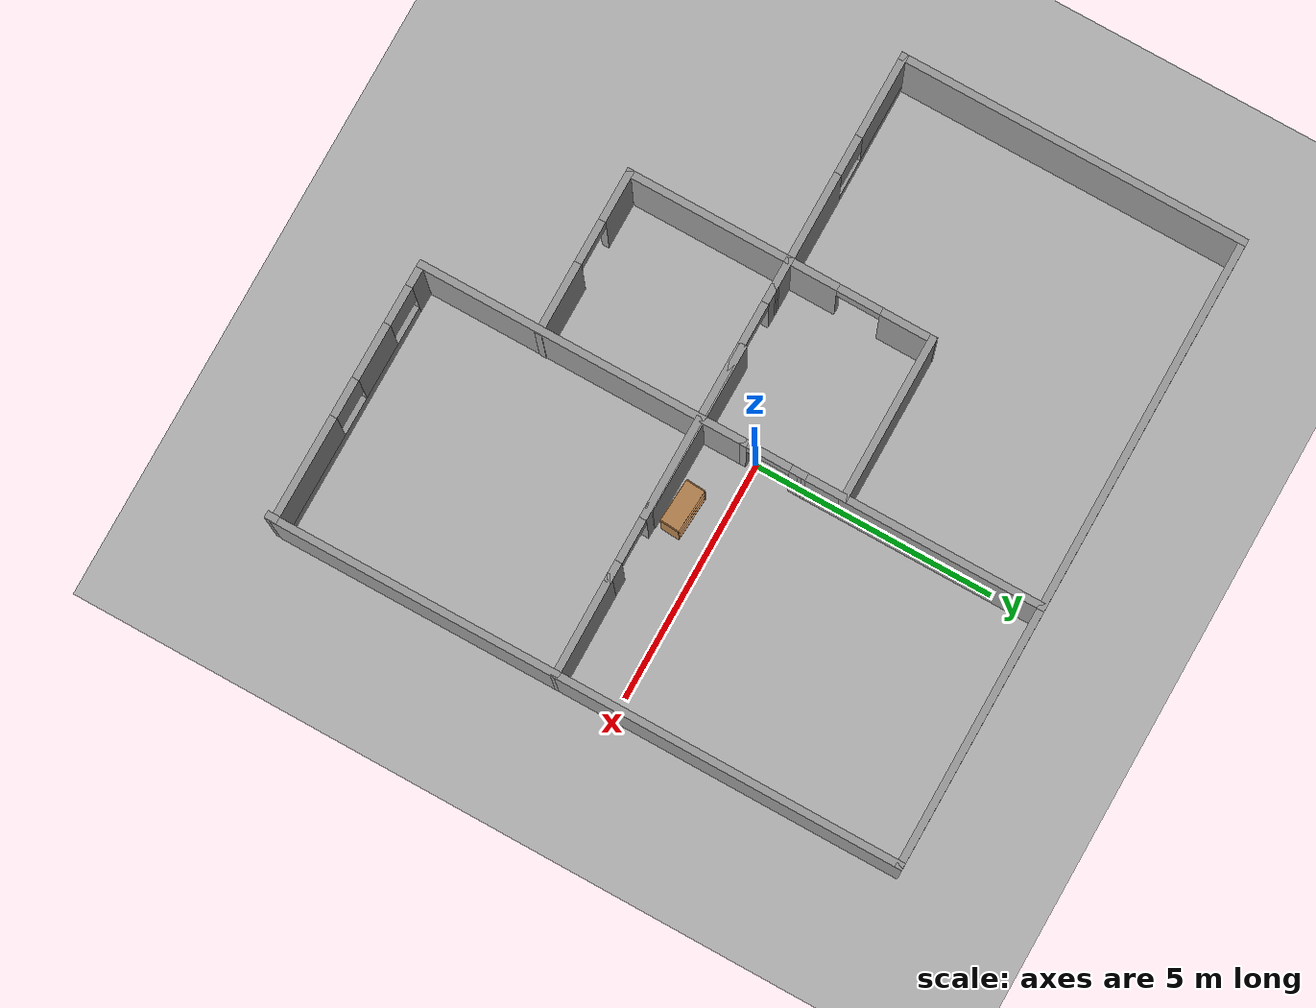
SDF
<sdf version="1.9">
 <world name="default">
  <gravity>0 0 -9.8</gravity>
  <magnetic_field>6e-06 2.3e-05 -4.2e-05</magnetic_field>
  <atmosphere type="adiabatic"/>
  <physics type="ode">
   <max_step_size>0.001</max_step_size>
   <real_time_factor>1</real_time_factor>
   <real_time_update_rate>1000</real_time_update_rate>
  </physics>
  <scene><ambient>0.4 0.4 0.4 1</ambient><background>0.7 0.7 0.7 1</background><shadows>true</shadows></scene>
  <model name="1plan">
   <pose>-1.11146 -0.57122 0 0 -0.009987 0</pose>
   <link name="Wall_0">
    <collision name="Wall_0_Collision">
     <geometry><box><size>3.48261 0.15 2.5</size></box></geometry>
     <pose>0 0 1.25 0 -0 0</pose>
    </collision>
    <visual name="Wall_0_Visual">
     <pose>0 0 1.25 0 -0 0</pose>
     <geometry><box><size>3.48261 0.15 2.5</size></box></geometry>
     <material>
      <script><uri>file://media/materials/scripts/gazebo.material</uri><name>Gazebo/Grey</name></script>
      <ambient>1 1 1 1</ambient>
     </material>
     <meta><layer>0</layer></meta>
    </visual>
    <pose>-0.500101 2.4239 0 0 -0 0</pose>
    <inertial>
     <mass>1</mass>
     <inertia><ixx>1</ixx><ixy>0</ixy><ixz>0</ixz><iyy>1</iyy><iyz>0</iyz><izz>1</izz></inertia>
    </inertial>
   </link>
   <link name="Wall_1">
    <collision name="Wall_1_Collision">
     <geometry><box><size>4.25 0.15 2.5</size></box></geometry>
     <pose>0 0 1.25 0 -0 0</pose>
    </collision>
    <visual name="Wall_1_Visual">
     <pose>0 0 1.25 0 -0 0</pose>
     <geometry><box><size>4.25 0.15 2.5</size></box></geometry>
     <material>
      <script><uri>file://media/materials/scripts/gazebo.material</uri><name>Gazebo/Grey</name></script>
      <ambient>1 1 1 1</ambient>
     </material>
     <meta><layer>0</layer></meta>
    </visual>
    <pose>1.1662 4.4739 0 0 -0 1.5708</pose>
    <inertial>
     <mass>1</mass>
     <inertia><ixx>1</ixx><ixy>0</ixy><ixz>0</ixz><iyy>1</iyy><iyz>0</iyz><izz>1</izz></inertia>
    </inertial>
   </link>
   <link name="Wall_12">
    <pose>-4.3588 -0.573924 0 0 -0 3.14159</pose>
    <visual name="Wall_12_Visual_0">
     <pose>-1.29006 0 1.25 0 -0 0</pose>
     <geometry><box><size>1.91988 0.15 2.5</size></box></geometry>
     <material>
      <script><uri>file://media/materials/scripts/gazebo.material</uri><name>Gazebo/Grey</name></script>
      <ambient>1 1 1 1</ambient>
     </material>
     <meta><layer>0</layer></meta>
    </visual>
    <collision name="Wall_12_Collision_0">
     <geometry><box><size>1.91988 0.15 2.5</size></box></geometry>
     <pose>-1.29006 0 1.25 0 -0 0</pose>
    </collision>
    <visual name="Wall_12_Visual_1">
     <pose>0.959941 0 0.25 0 -0 0</pose>
     <geometry><box><size>2.58012 0.15 0.5</size></box></geometry>
     <material>
      <script><uri>file://media/materials/scripts/gazebo.material</uri><name>Gazebo/Grey</name></script>
      <ambient>1 1 1 1</ambient>
     </material>
     <meta><layer>0</layer></meta>
    </visual>
    <collision name="Wall_12_Collision_1">
     <geometry><box><size>2.58012 0.15 0.5</size></box></geometry>
     <pose>0.959941 0 0.25 0 -0 0</pose>
    </collision>
    <visual name="Wall_12_Visual_2">
     <pose>1.35994 0 1.5 0 -0 0</pose>
     <geometry><box><size>1.78012 0.15 2</size></box></geometry>
     <material>
      <script><uri>file://media/materials/scripts/gazebo.material</uri><name>Gazebo/Grey</name></script>
      <ambient>1 1 1 1</ambient>
     </material>
     <meta><layer>0</layer></meta>
    </visual>
    <collision name="Wall_12_Collision_2">
     <geometry><box><size>1.78012 0.15 2</size></box></geometry>
     <pose>1.35994 0 1.5 0 -0 0</pose>
    </collision>
    <visual name="Wall_12_Visual_3">
     <pose>0.069882 0 1.9 0 -0 0</pose>
     <geometry><box><size>0.8 0.15 1.2</size></box></geometry>
     <material>
      <script><uri>file://media/materials/scripts/gazebo.material</uri><name>Gazebo/Grey</name></script>
      <ambient>1 1 1 1</ambient>
     </material>
     <meta><layer>0</layer></meta>
    </visual>
    <collision name="Wall_12_Collision_3">
     <geometry><box><size>0.8 0.15 1.2</size></box></geometry>
     <pose>0.069882 0 1.9 0 -0 0</pose>
    </collision>
    <inertial>
     <mass>1</mass>
     <inertia><ixx>1</ixx><ixy>0</ixy><ixz>0</ixz><iyy>1</iyy><iyz>0</iyz><izz>1</izz></inertia>
    </inertial>
   </link>
   <link name="Wall_14">
    <collision name="Wall_14_Collision">
     <geometry><box><size>7.25 0.15 2.5</size></box></geometry>
     <pose>0 0 1.25 0 -0 0</pose>
    </collision>
    <visual name="Wall_14_Visual">
     <pose>0 0 1.25 0 -0 0</pose>
     <geometry><box><size>7.25 0.15 2.5</size></box></geometry>
     <material>
      <script><uri>file://media/materials/scripts/gazebo.material</uri><name>Gazebo/Grey</name></script>
      <ambient>1 1 1 1</ambient>
     </material>
     <meta><layer>0</layer></meta>
    </visual>
    <pose>-6.5338 2.97608 0 0 -0 1.5708</pose>
    <inertial>
     <mass>1</mass>
     <inertia><ixx>1</ixx><ixy>0</ixy><ixz>0</ixz><iyy>1</iyy><iyz>0</iyz><izz>1</izz></inertia>
    </inertial>
   </link>
   <link name="Wall_16">
    <collision name="Wall_16_Collision">
     <geometry><box><size>7.85 0.15 2.5</size></box></geometry>
     <pose>0 0 1.25 0 -0 0</pose>
    </collision>
    <visual name="Wall_16_Visual">
     <pose>0 0 1.25 0 -0 0</pose>
     <geometry><box><size>7.85 0.15 2.5</size></box></geometry>
     <material>
      <script><uri>file://media/materials/scripts/gazebo.material</uri><name>Gazebo/Grey</name></script>
      <ambient>1 1 1 1</ambient>
     </material>
     <meta><layer>0</layer></meta>
    </visual>
    <pose>-2.6838 6.52499 0 0 0 -0.000282</pose>
    <inertial>
     <mass>1</mass>
     <inertia><ixx>1</ixx><ixy>0</ixy><ixz>0</ixz><iyy>1</iyy><iyz>0</iyz><izz>1</izz></inertia>
    </inertial>
   </link>
   <link name="Wall_18">
    <collision name="Wall_18_Collision">
     <geometry><box><size>5.5 0.15 2.5</size></box></geometry>
     <pose>0 0 1.25 0 -0 0</pose>
    </collision>
    <visual name="Wall_18_Visual">
     <pose>0 0 1.25 0 -0 0</pose>
     <geometry><box><size>5.5 0.15 2.5</size></box></geometry>
     <material>
      <script><uri>file://media/materials/scripts/gazebo.material</uri><name>Gazebo/Grey</name></script>
      <ambient>1 1 1 1</ambient>
     </material>
     <meta><layer>0</layer></meta>
    </visual>
    <pose>3.8412 6.5239 0 0 -0 0</pose>
    <inertial>
     <mass>1</mass>
     <inertia><ixx>1</ixx><ixy>0</ixy><ixz>0</ixz><iyy>1</iyy><iyz>0</iyz><izz>1</izz></inertia>
    </inertial>
   </link>
   <link name="Wall_19">
    <collision name="Wall_19_Collision">
     <geometry><box><size>7.25 0.15 2.5</size></box></geometry>
     <pose>0 0 1.25 0 -0 0</pose>
    </collision>
    <visual name="Wall_19_Visual">
     <pose>0 0 1.25 0 -0 0</pose>
     <geometry><box><size>7.25 0.15 2.5</size></box></geometry>
     <material>
      <script><uri>file://media/materials/scripts/gazebo.material</uri><name>Gazebo/Grey</name></script>
      <ambient>1 1 1 1</ambient>
     </material>
     <meta><layer>0</layer></meta>
    </visual>
    <pose>6.5162 2.9739 0 0 0 -1.5708</pose>
    <inertial>
     <mass>1</mass>
     <inertia><ixx>1</ixx><ixy>0</ixy><ixz>0</ixz><iyy>1</iyy><iyz>0</iyz><izz>1</izz></inertia>
    </inertial>
   </link>
   <link name="Wall_24">
    <collision name="Wall_24_Collision">
     <geometry><box><size>2.13698 0.15 2.5</size></box></geometry>
     <pose>0 0 1.25 0 -0 0</pose>
    </collision>
    <visual name="Wall_24_Visual">
     <pose>0 0 1.25 0 -0 0</pose>
     <geometry><box><size>2.13698 0.15 2.5</size></box></geometry>
     <material>
      <script><uri>file://media/materials/scripts/gazebo.material</uri><name>Gazebo/Grey</name></script>
      <ambient>1 1 1 1</ambient>
     </material>
     <meta><layer>0</layer></meta>
    </visual>
    <pose>5.52273 -0.580445 0 0 -0 0.004376</pose>
    <inertial>
     <mass>1</mass>
     <inertia><ixx>1</ixx><ixy>0</ixy><ixz>0</ixz><iyy>1</iyy><iyz>0</iyz><izz>1</izz></inertia>
    </inertial>
   </link>
   <link name="Wall_28">
    <collision name="Wall_28_Collision">
     <geometry><box><size>1 0.15 2.5</size></box></geometry>
     <pose>0 0 1.25 0 -0 0</pose>
    </collision>
    <visual name="Wall_28_Visual">
     <pose>0 0 1.25 0 -0 0</pose>
     <geometry><box><size>1 0.15 2.5</size></box></geometry>
     <material>
      <script><uri>file://media/materials/scripts/gazebo.material</uri><name>Gazebo/Grey</name></script>
      <ambient>1 1 1 1</ambient>
     </material>
     <meta><layer>0</layer></meta>
    </visual>
    <pose>1.1662 1.9989 0 0 0 -1.5708</pose>
    <inertial>
     <mass>1</mass>
     <inertia><ixx>1</ixx><ixy>0</ixy><ixz>0</ixz><iyy>1</iyy><iyz>0</iyz><izz>1</izz></inertia>
    </inertial>
   </link>
   <link name="Wall_31">
    <collision name="Wall_31_Collision">
     <geometry><box><size>0.982609 0.15 2.5</size></box></geometry>
     <pose>0 0 1.25 0 -0 0</pose>
    </collision>
    <visual name="Wall_31_Visual">
     <pose>0 0 1.25 0 -0 0</pose>
     <geometry><box><size>0.982609 0.15 2.5</size></box></geometry>
     <material>
      <script><uri>file://media/materials/scripts/gazebo.material</uri><name>Gazebo/Grey</name></script>
      <ambient>1 1 1 1</ambient>
     </material>
     <meta><layer>0</layer></meta>
    </visual>
    <pose>1.15533 -0.131532 0 0 0 -1.5708</pose>
    <inertial>
     <mass>1</mass>
     <inertia><ixx>1</ixx><ixy>0</ixy><ixz>0</ixz><iyy>1</iyy><iyz>0</iyz><izz>1</izz></inertia>
    </inertial>
   </link>
   <link name="Wall_32">
    <collision name="Wall_32_Collision">
     <geometry><box><size>2 0.15 2.5</size></box></geometry>
     <pose>0 0 1.25 0 -0 0</pose>
    </collision>
    <visual name="Wall_32_Visual">
     <pose>0 0 1.25 0 -0 0</pose>
     <geometry><box><size>2 0.15 2.5</size></box></geometry>
     <material>
      <script><uri>file://media/materials/scripts/gazebo.material</uri><name>Gazebo/Grey</name></script>
      <ambient>1 1 1 1</ambient>
     </material>
     <meta><layer>0</layer></meta>
    </visual>
    <pose>2.08033 -0.556532 0 0 0 -0.0094</pose>
    <inertial>
     <mass>1</mass>
     <inertia><ixx>1</ixx><ixy>0</ixy><ixz>0</ixz><iyy>1</iyy><iyz>0</iyz><izz>1</izz></inertia>
    </inertial>
   </link>
   <link name="Wall_34">
    <collision name="Wall_34_Collision">
     <geometry><box><size>0.75 0.15 2.5</size></box></geometry>
     <pose>0 0 1.25 0 -0 0</pose>
    </collision>
    <visual name="Wall_34_Visual">
     <pose>0 0 1.25 0 -0 0</pose>
     <geometry><box><size>0.75 0.15 2.5</size></box></geometry>
     <material>
      <script><uri>file://media/materials/scripts/gazebo.material</uri><name>Gazebo/Grey</name></script>
      <ambient>1 1 1 1</ambient>
     </material>
     <meta><layer>0</layer></meta>
    </visual>
    <pose>-1.8838 -0.573924 0 0 -0 0</pose>
    <inertial>
     <mass>1</mass>
     <inertia><ixx>1</ixx><ixy>0</ixy><ixz>0</ixz><iyy>1</iyy><iyz>0</iyz><izz>1</izz></inertia>
    </inertial>
   </link>
   <link name="Wall_36">
    <collision name="Wall_36_Collision">
     <geometry><box><size>1.64584 0.15 2.5</size></box></geometry>
     <pose>0 0 1.25 0 -0 0</pose>
    </collision>
    <visual name="Wall_36_Visual">
     <pose>0 0 1.25 0 -0 0</pose>
     <geometry><box><size>1.64584 0.15 2.5</size></box></geometry>
     <material>
      <script><uri>file://media/materials/scripts/gazebo.material</uri><name>Gazebo/Grey</name></script>
      <ambient>1 1 1 1</ambient>
     </material>
     <meta><layer>0</layer></meta>
    </visual>
    <pose>0.407508 -0.544576 0 0 0 -0.00436</pose>
    <inertial>
     <mass>1</mass>
     <inertia><ixx>1</ixx><ixy>0</ixy><ixz>0</ixz><iyy>1</iyy><iyz>0</iyz><izz>1</izz></inertia>
    </inertial>
   </link>
   <link name="Wall_37">
    <collision name="Wall_37_Collision">
     <geometry><box><size>6 0.15 2.5</size></box></geometry>
     <pose>0 0 1.25 0 -0 0</pose>
    </collision>
    <visual name="Wall_37_Visual">
     <pose>0 0 1.25 0 -0 0</pose>
     <geometry><box><size>6 0.15 2.5</size></box></geometry>
     <material>
      <script><uri>file://media/materials/scripts/gazebo.material</uri><name>Gazebo/Grey</name></script>
      <ambient>1 1 1 1</ambient>
     </material>
     <meta><layer>0</layer></meta>
    </visual>
    <pose>1.15533 -3.48153 0 0 0 -1.5708</pose>
    <inertial>
     <mass>1</mass>
     <inertia><ixx>1</ixx><ixy>0</ixy><ixz>0</ixz><iyy>1</iyy><iyz>0</iyz><izz>1</izz></inertia>
    </inertial>
   </link>
   <link name="Wall_46">
    <collision name="Wall_46_Collision">
     <geometry><box><size>3.5 0.15 2.5</size></box></geometry>
     <pose>0 0 1.25 0 -0 0</pose>
    </collision>
    <visual name="Wall_46_Visual">
     <pose>0 0 1.25 0 -0 0</pose>
     <geometry><box><size>3.5 0.15 2.5</size></box></geometry>
     <material>
      <script><uri>file://media/materials/scripts/gazebo.material</uri><name>Gazebo/Grey</name></script>
      <ambient>1 1 1 1</ambient>
     </material>
     <meta><layer>0</layer></meta>
    </visual>
    <pose>-2.1838 -2.24892 0 0 0 -1.5708</pose>
    <inertial>
     <mass>1</mass>
     <inertia><ixx>1</ixx><ixy>0</ixy><ixz>0</ixz><iyy>1</iyy><iyz>0</iyz><izz>1</izz></inertia>
    </inertial>
   </link>
   <link name="Wall_47">
    <pose>-0.508796 -3.92392 0 0 -0 0</pose>
    <visual name="Wall_47_Visual_0">
     <pose>-1.20168 0 1.25 0 -0 0</pose>
     <geometry><box><size>1.09663 0.15 2.5</size></box></geometry>
     <material>
      <script><uri>file://media/materials/scripts/gazebo.material</uri><name>Gazebo/Grey</name></script>
      <ambient>1 1 1 1</ambient>
     </material>
     <meta><layer>0</layer></meta>
    </visual>
    <collision name="Wall_47_Collision_0">
     <geometry><box><size>1.09663 0.15 2.5</size></box></geometry>
     <pose>-1.20168 0 1.25 0 -0 0</pose>
    </collision>
    <visual name="Wall_47_Visual_1">
     <pose>0.998315 0 1.25 0 -0 0</pose>
     <geometry><box><size>1.50337 0.15 2.5</size></box></geometry>
     <material>
      <script><uri>file://media/materials/scripts/gazebo.material</uri><name>Gazebo/Grey</name></script>
      <ambient>1 1 1 1</ambient>
     </material>
     <meta><layer>0</layer></meta>
    </visual>
    <collision name="Wall_47_Collision_1">
     <geometry><box><size>1.50337 0.15 2.5</size></box></geometry>
     <pose>0.998315 0 1.25 0 -0 0</pose>
    </collision>
    <visual name="Wall_47_Visual_2">
     <pose>-0.20337 0 2.25 0 -0 0</pose>
     <geometry><box><size>0.9 0.15 0.5</size></box></geometry>
     <material>
      <script><uri>file://media/materials/scripts/gazebo.material</uri><name>Gazebo/Grey</name></script>
      <ambient>1 1 1 1</ambient>
     </material>
     <meta><layer>0</layer></meta>
    </visual>
    <collision name="Wall_47_Collision_2">
     <geometry><box><size>0.9 0.15 0.5</size></box></geometry>
     <pose>-0.20337 0 2.25 0 -0 0</pose>
    </collision>
    <inertial>
     <mass>1</mass>
     <inertia><ixx>1</ixx><ixy>0</ixy><ixz>0</ixz><iyy>1</iyy><iyz>0</iyz><izz>1</izz></inertia>
    </inertial>
   </link>
   <link name="Wall_49">
    <pose>-2.1751 0.924989 0 0 0 -1.5766</pose>
    <visual name="Wall_49_Visual_0">
     <pose>-1.00434 0 1.25 0 -0 0</pose>
     <geometry><box><size>1.1392 0.15 2.5</size></box></geometry>
     <material>
      <script><uri>file://media/materials/scripts/gazebo.material</uri><name>Gazebo/Grey</name></script>
      <ambient>1 1 1 1</ambient>
     </material>
     <meta><layer>0</layer></meta>
    </visual>
    <collision name="Wall_49_Collision_0">
     <geometry><box><size>1.1392 0.15 2.5</size></box></geometry>
     <pose>-1.00434 0 1.25 0 -0 0</pose>
    </collision>
    <visual name="Wall_49_Visual_1">
     <pose>1.0196 0 1.25 0 -0 0</pose>
     <geometry><box><size>1.10868 0.15 2.5</size></box></geometry>
     <material>
      <script><uri>file://media/materials/scripts/gazebo.material</uri><name>Gazebo/Grey</name></script>
      <ambient>1 1 1 1</ambient>
     </material>
     <meta><layer>0</layer></meta>
    </visual>
    <collision name="Wall_49_Collision_1">
     <geometry><box><size>1.10868 0.15 2.5</size></box></geometry>
     <pose>1.0196 0 1.25 0 -0 0</pose>
    </collision>
    <visual name="Wall_49_Visual_2">
     <pose>0.015258 0 2.25 0 -0 0</pose>
     <geometry><box><size>0.9 0.15 0.5</size></box></geometry>
     <material>
      <script><uri>file://media/materials/scripts/gazebo.material</uri><name>Gazebo/Grey</name></script>
      <ambient>1 1 1 1</ambient>
     </material>
     <meta><layer>0</layer></meta>
    </visual>
    <collision name="Wall_49_Collision_2">
     <geometry><box><size>0.9 0.15 0.5</size></box></geometry>
     <pose>0.015258 0 2.25 0 -0 0</pose>
    </collision>
    <inertial>
     <mass>1</mass>
     <inertia><ixx>1</ixx><ixy>0</ixy><ixz>0</ixz><iyy>1</iyy><iyz>0</iyz><izz>1</izz></inertia>
    </inertial>
   </link>
   <link name="Wall_51">
    <pose>1.47273 -0.579358 0 0 0 -0.001778</pose>
    <visual name="Wall_51_Visual_0">
     <pose>-2.94256 0 1.25 0 -0 0</pose>
     <geometry><box><size>0.377932 0.15 2.5</size></box></geometry>
     <material>
      <script><uri>file://media/materials/scripts/gazebo.material</uri><name>Gazebo/Grey</name></script>
      <ambient>1 1 1 1</ambient>
     </material>
     <meta><layer>0</layer></meta>
    </visual>
    <collision name="Wall_51_Collision_0">
     <geometry><box><size>0.377932 0.15 2.5</size></box></geometry>
     <pose>-2.94256 0 1.25 0 -0 0</pose>
    </collision>
    <visual name="Wall_51_Visual_1">
     <pose>-0.02245 0 1.25 0 -0 0</pose>
     <geometry><box><size>3.66229 0.15 2.5</size></box></geometry>
     <material>
      <script><uri>file://media/materials/scripts/gazebo.material</uri><name>Gazebo/Grey</name></script>
      <ambient>1 1 1 1</ambient>
     </material>
     <meta><layer>0</layer></meta>
    </visual>
    <collision name="Wall_51_Collision_1">
     <geometry><box><size>3.66229 0.15 2.5</size></box></geometry>
     <pose>-0.02245 0 1.25 0 -0 0</pose>
    </collision>
    <visual name="Wall_51_Visual_2">
     <pose>2.92011 0 1.25 0 -0 0</pose>
     <geometry><box><size>0.422833 0.15 2.5</size></box></geometry>
     <material>
      <script><uri>file://media/materials/scripts/gazebo.material</uri><name>Gazebo/Grey</name></script>
      <ambient>1 1 1 1</ambient>
     </material>
     <meta><layer>0</layer></meta>
    </visual>
    <collision name="Wall_51_Collision_2">
     <geometry><box><size>0.422833 0.15 2.5</size></box></geometry>
     <pose>2.92011 0 1.25 0 -0 0</pose>
    </collision>
    <visual name="Wall_51_Visual_3">
     <pose>-2.3036 0 2.25 0 -0 0</pose>
     <geometry><box><size>0.9 0.15 0.5</size></box></geometry>
     <material>
      <script><uri>file://media/materials/scripts/gazebo.material</uri><name>Gazebo/Grey</name></script>
      <ambient>1 1 1 1</ambient>
     </material>
     <meta><layer>0</layer></meta>
    </visual>
    <collision name="Wall_51_Collision_3">
     <geometry><box><size>0.9 0.15 0.5</size></box></geometry>
     <pose>-2.3036 0 2.25 0 -0 0</pose>
    </collision>
    <visual name="Wall_51_Visual_4">
     <pose>2.25869 0 2.25 0 -0 0</pose>
     <geometry><box><size>0.9 0.15 0.5</size></box></geometry>
     <material>
      <script><uri>file://media/materials/scripts/gazebo.material</uri><name>Gazebo/Grey</name></script>
      <ambient>1 1 1 1</ambient>
     </material>
     <meta><layer>0</layer></meta>
    </visual>
    <collision name="Wall_51_Collision_4">
     <geometry><box><size>0.9 0.15 0.5</size></box></geometry>
     <pose>2.25869 0 2.25 0 -0 0</pose>
    </collision>
    <inertial>
     <mass>1</mass>
     <inertia><ixx>1</ixx><ixy>0</ixy><ixz>0</ixz><iyy>1</iyy><iyz>0</iyz><izz>1</izz></inertia>
    </inertial>
   </link>
   <link name="Wall_52">
    <collision name="Wall_52_Collision">
     <geometry><box><size>0.15 0.15 2.5</size></box></geometry>
     <pose>0 0 1.25 0 -0 0</pose>
    </collision>
    <visual name="Wall_52_Visual">
     <pose>0 0 1.25 0 -0 0</pose>
     <geometry><box><size>0.15 0.15 2.5</size></box></geometry>
     <material>
      <script><uri>file://media/materials/scripts/gazebo.material</uri><name>Gazebo/Grey</name></script>
      <ambient>0 0 0 1</ambient>
     </material>
     <meta><layer>0</layer></meta>
    </visual>
    <pose>4.52925 -0.584793 0 0 -0 0</pose>
    <inertial>
     <mass>1</mass>
     <inertia><ixx>1</ixx><ixy>0</ixy><ixz>0</ixz><iyy>1</iyy><iyz>0</iyz><izz>1</izz></inertia>
    </inertial>
   </link>
   <link name="Wall_55">
    <pose>1.16077 0.929337 0 0 0 -1.57923</pose>
    <visual name="Wall_55_Visual_0">
     <pose>-0.554401 0 1.25 0 -0 0</pose>
     <geometry><box><size>0.330374 0.15 2.5</size></box></geometry>
     <material>
      <script><uri>file://media/materials/scripts/gazebo.material</uri><name>Gazebo/Grey</name></script>
      <ambient>1 1 1 1</ambient>
     </material>
     <meta><layer>0</layer></meta>
    </visual>
    <collision name="Wall_55_Collision_0">
     <geometry><box><size>0.330374 0.15 2.5</size></box></geometry>
     <pose>-0.554401 0 1.25 0 -0 0</pose>
    </collision>
    <visual name="Wall_55_Visual_1">
     <pose>0.615187 0 1.25 0 -0 0</pose>
     <geometry><box><size>0.208802 0.15 2.5</size></box></geometry>
     <material>
      <script><uri>file://media/materials/scripts/gazebo.material</uri><name>Gazebo/Grey</name></script>
      <ambient>1 1 1 1</ambient>
     </material>
     <meta><layer>0</layer></meta>
    </visual>
    <collision name="Wall_55_Collision_1">
     <geometry><box><size>0.208802 0.15 2.5</size></box></geometry>
     <pose>0.615187 0 1.25 0 -0 0</pose>
    </collision>
    <visual name="Wall_55_Visual_2">
     <pose>0.060786 0 2.25 0 -0 0</pose>
     <geometry><box><size>0.9 0.15 0.5</size></box></geometry>
     <material>
      <script><uri>file://media/materials/scripts/gazebo.material</uri><name>Gazebo/Grey</name></script>
      <ambient>1 1 1 1</ambient>
     </material>
     <meta><layer>0</layer></meta>
    </visual>
    <collision name="Wall_55_Collision_2">
     <geometry><box><size>0.9 0.15 0.5</size></box></geometry>
     <pose>0.060786 0 2.25 0 -0 0</pose>
    </collision>
    <inertial>
     <mass>1</mass>
     <inertia><ixx>1</ixx><ixy>0</ixy><ixz>0</ixz><iyy>1</iyy><iyz>0</iyz><izz>1</izz></inertia>
    </inertial>
   </link>
   <link name="Wall_58">
    <collision name="Wall_58_Collision">
     <geometry><box><size>6 0.15 2.5</size></box></geometry>
     <pose>0 0 1.25 0 -0 0</pose>
    </collision>
    <visual name="Wall_58_Visual">
     <pose>0 0 1.25 0 -0 0</pose>
     <geometry><box><size>6 0.15 2.5</size></box></geometry>
     <material>
      <script><uri>file://media/materials/scripts/gazebo.material</uri><name>Gazebo/Grey</name></script>
      <ambient>1 1 1 1</ambient>
     </material>
     <meta><layer>0</layer></meta>
    </visual>
    <pose>6.5249 -3.5011 0 0 0 -1.56782</pose>
    <inertial>
     <mass>1</mass>
     <inertia><ixx>1</ixx><ixy>0</ixy><ixz>0</ixz><iyy>1</iyy><iyz>0</iyz><izz>1</izz></inertia>
    </inertial>
   </link>
   <link name="Wall_59">
    <collision name="Wall_59_Collision">
     <geometry><box><size>0.25 0.15 2.5</size></box></geometry>
     <pose>0 0 1.25 0 -0 0</pose>
    </collision>
    <visual name="Wall_59_Visual">
     <pose>0 0 1.25 0 -0 0</pose>
     <geometry><box><size>0.25 0.15 2.5</size></box></geometry>
     <material>
      <script><uri>file://media/materials/scripts/gazebo.material</uri><name>Gazebo/Grey</name></script>
      <ambient>0 0 0 1</ambient>
     </material>
     <meta><layer>0</layer></meta>
    </visual>
    <pose>6.5249 -6.4761 0 0 0 -1.5708</pose>
    <inertial>
     <mass>1</mass>
     <inertia><ixx>1</ixx><ixy>0</ixy><ixz>0</ixz><iyy>1</iyy><iyz>0</iyz><izz>1</izz></inertia>
    </inertial>
   </link>
   <link name="Wall_61">
    <collision name="Wall_61_Collision">
     <geometry><box><size>0.15 0.15 2.5</size></box></geometry>
     <pose>0 0 1.25 0 -0 0</pose>
    </collision>
    <visual name="Wall_61_Visual">
     <pose>0 0 1.25 0 -0 0</pose>
     <geometry><box><size>0.15 0.15 2.5</size></box></geometry>
     <material>
      <script><uri>file://media/materials/scripts/gazebo.material</uri><name>Gazebo/Grey</name></script>
      <ambient>0 0 0 1</ambient>
     </material>
     <meta><layer>0</layer></meta>
    </visual>
    <pose>1.15533 -6.40653 0 0 -0 0</pose>
    <inertial>
     <mass>1</mass>
     <inertia><ixx>1</ixx><ixy>0</ixy><ixz>0</ixz><iyy>1</iyy><iyz>0</iyz><izz>1</izz></inertia>
    </inertial>
   </link>
   <link name="Wall_62">
    <pose>3.84012 -6.41631 0 0 0 -0.003644</pose>
    <visual name="Wall_62_Visual_0">
     <pose>-2.49003 0 1.25 0 -0 0</pose>
     <geometry><box><size>0.539545 0.15 2.5</size></box></geometry>
     <material>
      <script><uri>file://media/materials/scripts/gazebo.material</uri><name>Gazebo/Grey</name></script>
      <ambient>1 1 1 1</ambient>
     </material>
     <meta><layer>0</layer></meta>
    </visual>
    <collision name="Wall_62_Collision_0">
     <geometry><box><size>0.539545 0.15 2.5</size></box></geometry>
     <pose>-2.49003 0 1.25 0 -0 0</pose>
    </collision>
    <visual name="Wall_62_Visual_1">
     <pose>0.269773 0 0.25 0 -0 0</pose>
     <geometry><box><size>4.98006 0.15 0.5</size></box></geometry>
     <material>
      <script><uri>file://media/materials/scripts/gazebo.material</uri><name>Gazebo/Grey</name></script>
      <ambient>1 1 1 1</ambient>
     </material>
     <meta><layer>0</layer></meta>
    </visual>
    <collision name="Wall_62_Collision_1">
     <geometry><box><size>4.98006 0.15 0.5</size></box></geometry>
     <pose>0.269773 0 0.25 0 -0 0</pose>
    </collision>
    <visual name="Wall_62_Visual_2">
     <pose>-0.839075 0 1.5 0 -0 0</pose>
     <geometry><box><size>1.16236 0.15 2</size></box></geometry>
     <material>
      <script><uri>file://media/materials/scripts/gazebo.material</uri><name>Gazebo/Grey</name></script>
      <ambient>1 1 1 1</ambient>
     </material>
     <meta><layer>0</layer></meta>
    </visual>
    <collision name="Wall_62_Collision_2">
     <geometry><box><size>1.16236 0.15 2</size></box></geometry>
     <pose>-0.839075 0 1.5 0 -0 0</pose>
    </collision>
    <visual name="Wall_62_Visual_3">
     <pose>1.65095 0 1.5 0 -0 0</pose>
     <geometry><box><size>2.2177 0.15 2</size></box></geometry>
     <material>
      <script><uri>file://media/materials/scripts/gazebo.material</uri><name>Gazebo/Grey</name></script>
      <ambient>1 1 1 1</ambient>
     </material>
     <meta><layer>0</layer></meta>
    </visual>
    <collision name="Wall_62_Collision_3">
     <geometry><box><size>2.2177 0.15 2</size></box></geometry>
     <pose>1.65095 0 1.5 0 -0 0</pose>
    </collision>
    <visual name="Wall_62_Visual_4">
     <pose>-1.82025 0 1.9 0 -0 0</pose>
     <geometry><box><size>0.8 0.15 1.2</size></box></geometry>
     <material>
      <script><uri>file://media/materials/scripts/gazebo.material</uri><name>Gazebo/Grey</name></script>
      <ambient>1 1 1 1</ambient>
     </material>
     <meta><layer>0</layer></meta>
    </visual>
    <collision name="Wall_62_Collision_4">
     <geometry><box><size>0.8 0.15 1.2</size></box></geometry>
     <pose>-1.82025 0 1.9 0 -0 0</pose>
    </collision>
    <visual name="Wall_62_Visual_5">
     <pose>0.142104 0 1.9 0 -0 0</pose>
     <geometry><box><size>0.8 0.15 1.2</size></box></geometry>
     <material>
      <script><uri>file://media/materials/scripts/gazebo.material</uri><name>Gazebo/Grey</name></script>
      <ambient>1 1 1 1</ambient>
     </material>
     <meta><layer>0</layer></meta>
    </visual>
    <collision name="Wall_62_Collision_5">
     <geometry><box><size>0.8 0.15 1.2</size></box></geometry>
     <pose>0.142104 0 1.9 0 -0 0</pose>
    </collision>
    <inertial>
     <mass>1</mass>
     <inertia><ixx>1</ixx><ixy>0</ixy><ixz>0</ixz><iyy>1</iyy><iyz>0</iyz><izz>1</izz></inertia>
    </inertial>
   </link>
   <static>true</static>
  </model>
  <model name="ground_plane">
   <static>true</static>
   <link name="link">
    <collision name="collision">
     <geometry><plane><normal>0 0 1</normal><size>100 100</size></plane></geometry>
     <surface><friction><ode><mu>100</mu><mu2>50</mu2></ode></friction></surface>
    </collision>
    <visual name="visual">
     <cast_shadows>false</cast_shadows>
     <geometry><plane><normal>0 0 1</normal><size>100 100</size></plane></geometry>
     <material>
      <ambient>0.3 0.3 0.3 1</ambient>
      <diffuse>0.7 0.7 0.7 1</diffuse>
      <specular>0.01 0.01 0.01 1</specular>
     </material>
    </visual>
    <inertial>
     <mass>1</mass>
     <inertia><ixx>1</ixx><ixy>0</ixy><ixz>0</ixz><iyy>1</iyy><iyz>0</iyz><izz>1</izz></inertia>
    </inertial>
   </link>
   <pose>3.51044 2.11714 0 0 -0 0</pose>
  </model>
  <model name="Bookshelf">
   <static>true</static>
   <link name="link">
    <inertial>
     <mass>1</mass>
     <inertia><ixx>1</ixx><ixy>0</ixy><ixz>0</ixz><iyy>1</iyy><iyz>0</iyz><izz>1</izz></inertia>
    </inertial>
    <collision name="back">
     <pose>0 0.005 0.6 0 0 0</pose>
     <geometry><box><size>0.9 0.01 1.2</size></box></geometry>
    </collision>
    <visual name="visual1">
     <pose>0 0.005 0.6 0 0 0</pose>
     <geometry><box><size>0.9 0.01 1.2</size></box></geometry>
     <material>
      <diffuse>1 1 1 1</diffuse>
      <script><uri>file://media/materials/scripts/gazebo.material</uri><name>Gazebo/Wood</name></script>
      <pbr>
       <metal>
        <albedo_map>https://fuel.gazebosim.org/1.0/openrobotics/models/bookshelf/4/files/bookshelf_diffuse.jpg</albedo_map>
       </metal>
      </pbr>
     </material>
    </visual>
    <collision name="left_side">
     <pose>0.45 -0.195 0.6 0 0 0</pose>
     <geometry><box><size>0.02 0.4 1.2</size></box></geometry>
    </collision>
    <visual name="visual2">
     <pose>0.45 -0.195 0.6 0 0 0</pose>
     <geometry><box><size>0.02 0.4 1.2</size></box></geometry>
     <material>
      <diffuse>1 1 1 1</diffuse>
      <script><uri>file://media/materials/scripts/gazebo.material</uri><name>Gazebo/Wood</name></script>
      <pbr>
       <metal>
        <albedo_map>https://fuel.gazebosim.org/1.0/openrobotics/models/bookshelf/4/files/bookshelf_diffuse.jpg</albedo_map>
       </metal>
      </pbr>
     </material>
    </visual>
    <collision name="right_side">
     <pose>-0.45 -0.195 0.6 0 0 0</pose>
     <geometry><box><size>0.02 0.4 1.2</size></box></geometry>
    </collision>
    <visual name="visual3">
     <pose>-0.45 -0.195 0.6 0 0 0</pose>
     <geometry><box><size>0.02 0.4 1.2</size></box></geometry>
     <material>
      <diffuse>1 1 1 1</diffuse>
      <script><uri>file://media/materials/scripts/gazebo.material</uri><name>Gazebo/Wood</name></script>
      <pbr>
       <metal>
        <albedo_map>https://fuel.gazebosim.org/1.0/openrobotics/models/bookshelf/4/files/bookshelf_diffuse.jpg</albedo_map>
       </metal>
      </pbr>
     </material>
    </visual>
    <collision name="bottom">
     <pose>0 -0.195 0.03 0 0 0</pose>
     <geometry><box><size>0.88 0.4 0.06</size></box></geometry>
    </collision>
    <visual name="visual4">
     <pose>0 -0.195 0.03 0 0 0</pose>
     <geometry><box><size>0.88 0.4 0.06</size></box></geometry>
     <material>
      <diffuse>1 1 1 1</diffuse>
      <script><uri>file://media/materials/scripts/gazebo.material</uri><name>Gazebo/Wood</name></script>
      <pbr>
       <metal>
        <albedo_map>https://fuel.gazebosim.org/1.0/openrobotics/models/bookshelf/4/files/bookshelf_diffuse.jpg</albedo_map>
       </metal>
      </pbr>
     </material>
    </visual>
    <collision name="top">
     <pose>0 -0.195 1.19 0 0 0</pose>
     <geometry><box><size>0.88 0.4 0.02</size></box></geometry>
    </collision>
    <visual name="visual5">
     <pose>0 -0.195 1.19 0 0 0</pose>
     <geometry><box><size>0.88 0.4 0.02</size></box></geometry>
     <material>
      <diffuse>1 1 1 1</diffuse>
      <script><uri>file://media/materials/scripts/gazebo.material</uri><name>Gazebo/Wood</name></script>
      <pbr>
       <metal>
        <albedo_map>https://fuel.gazebosim.org/1.0/openrobotics/models/bookshelf/4/files/bookshelf_diffuse.jpg</albedo_map>
       </metal>
      </pbr>
     </material>
    </visual>
    <collision name="low_shelf">
     <pose>0 -0.195 0.43 0 0 0</pose>
     <geometry><box><size>0.88 0.4 0.02</size></box></geometry>
    </collision>
    <visual name="visual6">
     <pose>0 -0.195 0.43 0 0 0</pose>
     <geometry><box><size>0.88 0.4 0.02</size></box></geometry>
     <material>
      <diffuse>1 1 1 1</diffuse>
      <script><uri>file://media/materials/scripts/gazebo.material</uri><name>Gazebo/Wood</name></script>
      <pbr>
       <metal>
        <albedo_map>https://fuel.gazebosim.org/1.0/openrobotics/models/bookshelf/4/files/bookshelf_diffuse.jpg</albedo_map>
       </metal>
      </pbr>
     </material>
    </visual>
    <collision name="high_shelf">
     <pose>0 -0.195 0.8 0 0 0</pose>
     <geometry><box><size>0.88 0.4 0.02</size></box></geometry>
    </collision>
    <visual name="visual7">
     <pose>0 -0.195 0.8 0 0 0</pose>
     <geometry><box><size>0.88 0.4 0.02</size></box></geometry>
     <material>
      <diffuse>1 1 1 1</diffuse>
      <script><uri>file://media/materials/scripts/gazebo.material</uri><name>Gazebo/Wood</name></script>
      <pbr>
       <metal>
        <albedo_map>https://fuel.gazebosim.org/1.0/openrobotics/models/bookshelf/4/files/bookshelf_diffuse.jpg</albedo_map>
       </metal>
      </pbr>
     </material>
    </visual>
   </link>
   <pose>1.43433 -0.934819 0 0 -0 3.07441</pose>
  </model>
  <light name="pointlight" type="point">
   <pose>3.19416 2.58792 2 0 -0 0</pose>
   <cast_shadows>false</cast_shadows>
   <intensity>1</intensity>
   <direction>0 0 -1</direction>
   <diffuse>0.5 0.5 0.5 1</diffuse>
   <specular>0.5 0.5 0.5 1</specular>
   <attenuation>
    <range>4</range>
    <linear>0.5</linear>
    <constant>0.20000000000000001</constant>
    <quadratic>0.01</quadratic>
   </attenuation>
   <spot><inner_angle>0</inner_angle><outer_angle>0</outer_angle><falloff>0</falloff></spot>
  </light>
  <light name="sun" type="directional">
   <pose>18.0717 -1.28599 10 0 -0 0</pose>
   <intensity>1</intensity>
   <direction>-0.5 0.1 -0.9</direction>
   <diffuse>0.8 0.8 0.8 1</diffuse>
   <specular>0.2 0.2 0.2 1</specular>
   <attenuation>
    <range>1000</range>
    <linear>0.01</linear>
    <constant>0.90000000000000002</constant>
    <quadratic>0.001</quadratic>
   </attenuation>
   <spot><inner_angle>0</inner_angle><outer_angle>0</outer_angle><falloff>0</falloff></spot>
  </light>
 </world>
</sdf>
